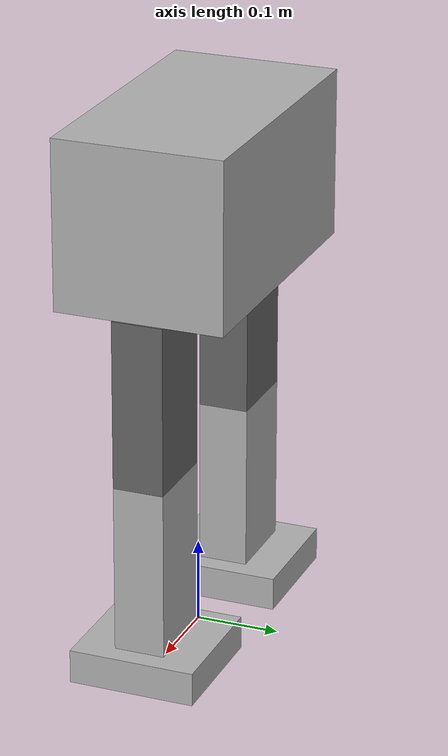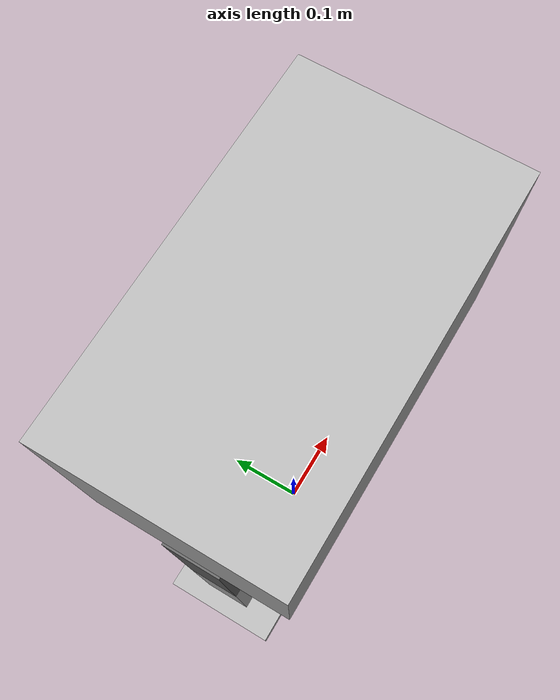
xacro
<?xml version="1.0"?>
<robot name="robo" xmlns:xacro="http://www.ros.org/wiki/xacro">
  <xacro:include filename="$(find biped_desc)/urdf/base.xacro" />

  <!-- variables -->
  <!-- the bot walks in the y direction -->

  <xacro:property name="femur_height" value="0.2" />
  <xacro:property name="femur_length" value="0.1" />
  <xacro:property name="femur_width" value="0.06" />

  <xacro:property name="leg_height" value="0.2" />
  <xacro:property name="leg_length" value="0.1" />
  <xacro:property name="leg_width" value="0.06" />

  <xacro:property name="base_height" value="0.2" /> <!-- z axis, blue color -->
  <xacro:property name="base_length" value="0.35" /> <!-- x axis, red color -->
  <xacro:property name="base_width" value="0.2" /> <!-- y axis, green color -->

  <xacro:property name="feet_height" value="0.04" />
  <xacro:property name="feet_length" value="0.15" />
  <xacro:property name="feet_width" value="0.15" />

  <!-- macros -->

  <xacro:macro name="femur_link" params="prefix">
    <link name="${prefix}_femur_link">
      <visual>
        <geometry>
          <box size="${femur_length} ${femur_width} ${femur_height}" />
        </geometry>
        <origin xyz="0 0 ${-femur_height / 2.0}" rpy="0 0 0" />
        <material name="lightgray" />
      </visual>
      <collision>
        <geometry>
          <box size="${femur_length} ${femur_width} ${femur_height}" />
        </geometry>
        <origin xyz="0 0 ${-femur_height / 2.0}" rpy="0 0 0" />
      </collision>
      <xacro:box_inertia m="0.500" x="${femur_length}" y="${femur_width}" z="${femur_height}" o_xyz="0 0 ${-femur_height / 2.0}" o_rpy="0 0 0" />
    </link>
  </xacro:macro>

  <xacro:macro name="leg_link" params="prefix">
    <link name="${prefix}_leg_link">
      <visual>
        <geometry>
          <box size="${leg_length} ${leg_width} ${leg_height}" />
        </geometry>
        <origin xyz="0 0 ${-leg_height / 2.0}" rpy="0 0 0" />
        <material name="gray" />
      </visual>
      <collision>
        <geometry>
          <box size="${leg_length} ${leg_width} ${leg_height}" />
        </geometry>
        <origin xyz="0 0 ${-leg_height / 2.0}" rpy="0 0 0" />
      </collision>
      <xacro:box_inertia m="0.500" x="${leg_length}" y="${leg_width}" z="${leg_height}" o_xyz="0 0 ${-leg_height / 2.0}" o_rpy="0 0 0" />
    </link>
  </xacro:macro>

  <xacro:macro name="feet_link" params="prefix">
    <link name="${prefix}_feet_link">
      <visual>
        <geometry>
          <box size="${feet_length} ${feet_width} ${feet_height}" />
        </geometry>
        <origin xyz="0 0 ${-feet_height / 2.0}" rpy="0 0 0" />
        <material name="gray" />
      </visual>
      <collision>
        <geometry>
          <box size="${feet_length} ${feet_width} ${feet_height}" />
        </geometry>
        <origin xyz="0 0 ${-feet_height / 2.0}" rpy="0 0 0" />
      </collision>
      <xacro:box_inertia m="0.200" x="${feet_length}" y="${feet_width}" z="${feet_height}" o_xyz="0 0 ${-feet_height / 2.0}" o_rpy="0 0 0" />
    </link>
  </xacro:macro>

  <!-- parts -->

  <link name="base_footprint" />

  <joint name="base_joint" type="fixed">
    <parent link="base_footprint"/>
    <child link="base_link"/>
    <origin xyz="0 0 ${femur_height + leg_height + feet_height}" rpy="0 0 0" />
  </joint>

  <link name="base_link">
    <visual>
      <geometry>
        <box size="${base_length} ${base_width} ${base_height} "/>
      </geometry>
      <origin xyz="0 0 ${base_height / 2.0}" rpy="0 0 0" />
      <material name="gray" />
    </visual>
    <collision>
      <geometry>
        <box size="${base_length} ${base_width} ${base_height} "/>
      </geometry>
      <origin xyz="0 0 ${base_height / 2.0}" rpy="0 0 0" />
    </collision>
    <xacro:box_inertia m="0.850" x="${base_length}" y="${base_height}" z="${base_width}" o_xyz="0 0 ${base_height / 2.0}" o_rpy="0 0 0" />
  </link>

  <!-- left femur and leg -->

  <xacro:femur_link prefix="left"/>

  <joint name="base_left_femur_joint" type="revolute">
    <parent link="base_link" />
    <child link="left_femur_link" />
    <origin xyz="${base_length / 2.75} 0 0" rpy="0 0 0"/>
    <axis xyz="1 0 0" />
    <limit lower="-${pi / 4.0}" upper="${pi / 4.0}" effort="100" velocity="100" />
  </joint>

  <xacro:leg_link prefix="left"/>

  <joint name="left_leg_femur_joint" type="revolute">
    <parent link="left_femur_link" />
    <child link="left_leg_link" />
    <origin xyz="0 0 ${-leg_height}" rpy="0 0 0"/>
    <axis xyz="1 0 0" />
    <limit lower="-${pi / 4.0}" upper="${pi / 4.0}" effort="100" velocity="100" />
  </joint>

  <!-- right femur and leg -->

  <xacro:femur_link prefix="right"/>

  <joint name="base_right_femur_joint" type="revolute">
    <parent link="base_link" />
    <child link="right_femur_link" />
    <origin xyz="${-base_length / 2.75} 0 0" rpy="0 0 0"/>
    <axis xyz="1 0 0" />
    <limit lower="-${pi / 4.0}" upper="${pi / 4.0}" effort="100" velocity="100" />
  </joint>

  <xacro:leg_link prefix="right"/>

  <joint name="right_leg_femur_joint" type="revolute">
    <parent link="right_femur_link" />
    <child link="right_leg_link" />
    <origin xyz="0 0 ${-leg_height}" rpy="0 0 0"/>
    <axis xyz="1 0 0" />
    <limit lower="-${pi / 4.0}" upper="${pi / 4.0}" effort="100" velocity="100" />
  </joint>

  <!-- feet -->

  <xacro:feet_link prefix="left" />

  <joint name="left_feet_femur_joint" type="fixed">
    <parent link="left_leg_link" />
    <child link="left_feet_link" />
    <origin xyz="0 0 ${-leg_height}" rpy="0 0 0"/>
  </joint>

  <xacro:feet_link prefix="right" />

  <joint name="right_feet_femur_joint" type="fixed">
    <parent link="right_leg_link" />
    <child link="right_feet_link" />
    <origin xyz="0 0 ${-leg_height}" rpy="0 0 0"/>
  </joint>

</robot>

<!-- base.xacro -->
<robot xmlns:xacro="http://www.ros.org/wiki/xacro">

  <!-- colors -->

  <material name="black">
    <color rgba="0 0 0 1" />
  </material>
  <material name="green">
    <color rgba="0 0.6 0 1" />
  </material>
  <material name="lightgray">
    <color rgba="0.4 0.4 0.4 1" />
  </material>
  <material name="gray">
    <color rgba="0.7 0.7 0.7 1" />
  </material>

  <!-- inertias -->

  <xacro:macro name="box_inertia" params="m x y z o_xyz o_rpy">
    <inertial>
      <mass value="${m}" />
      <origin xyz="${o_xyz}" rpy="${o_rpy}" />
      <inertia ixx="${(m/12) * (z*z + y*y)}" ixy="0" ixz="0"
        iyy="${(m/12) * (z*z + x*x)}" iyz="0"
        izz="${(m/12) * (x*x + y*y)}"
        />
    </inertial>
  </xacro:macro>
  <xacro:macro name="cylinder_inertia" params="m r l o_xyz o_rpy">
    <inertial>
      <mass value="${m}" />
      <origin xyz="${o_xyz}" rpy="${o_rpy}" />
      <inertia ixx="${(m/12) * (3*r*r + l*l)}" ixy="0" ixz="0"
        iyy="${(m/12) * (3*r*r + l*l)}" iyz="0"
        izz="${(m/2) * (r*r)}"
        />
    </inertial>
  </xacro:macro>
  <xacro:macro name="sphere_inertia" params="m r o_xyz o_rpy">
    <inertial>
      <mass value="${m}" />
      <origin xyz="${o_xyz}" rpy="${o_rpy}" />
      <inertia ixx="${(2/5) * m * r * r}" ixy="0" ixz="0"
        iyy="${(2/5) * m * r * r}" iyz="0"
        izz="${(2/5) * m * r * r}"
        />
    </inertial>
  </xacro:macro>
</robot>
